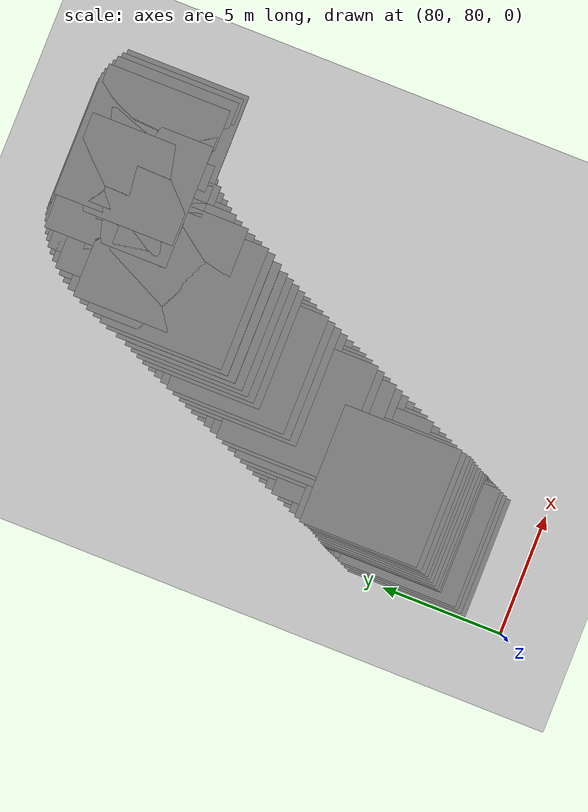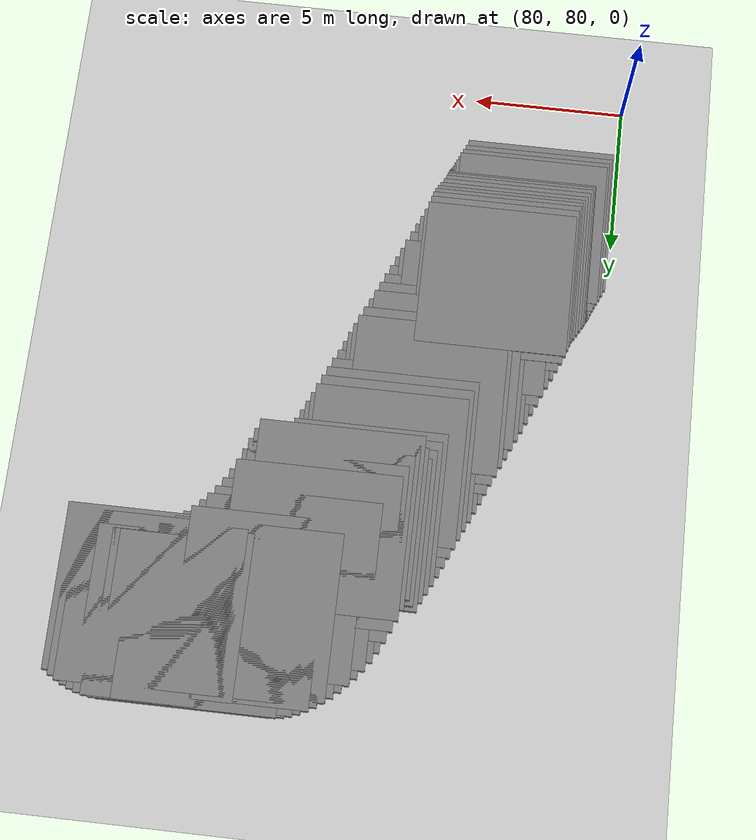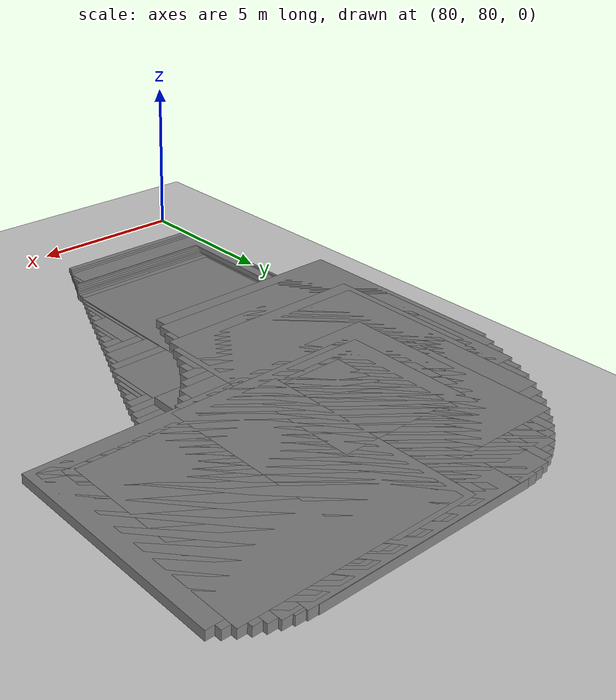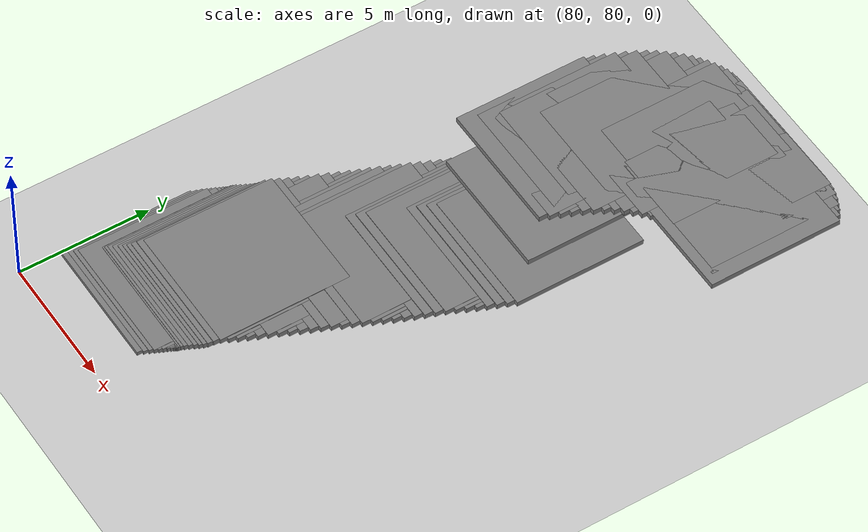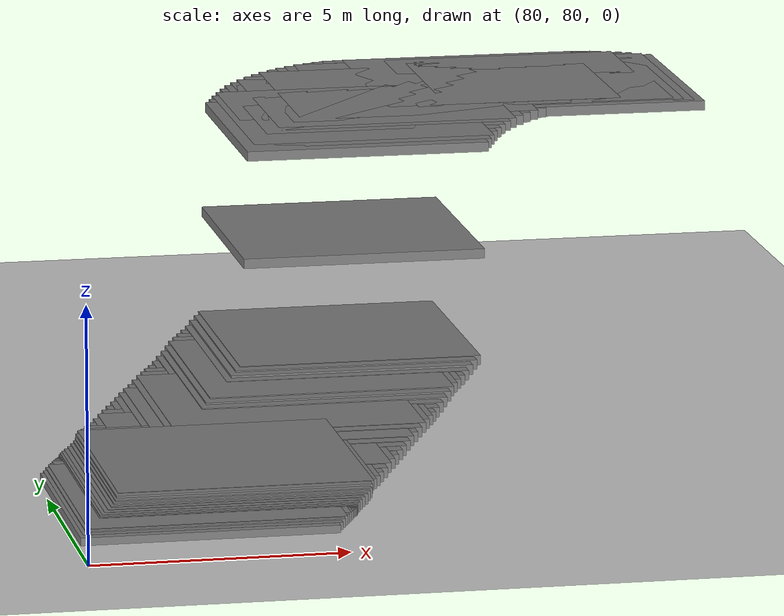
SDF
<sdf version="1.6">
 <world name="default">
  <include><uri>model://sun</uri></include>
  <include><uri>model://ground_plane</uri></include>
  <model name="road_segment_82">
   <static>true</static>
   <link name="link">
    <visual name="visual">
     <geometry><box><size>5.0 5.0 0.2</size></box></geometry>
     <material><ambient>0.5 0.5 0.5 1</ambient><diffuse>0.5 0.5 0.5 1</diffuse></material>
     <pose>93.2788015256505 99.34910517283299 4.692770348083311 0 0 0</pose>
    </visual>
    <collision name="collision">
     <geometry><box><size>5.0 5.0 0.2</size></box></geometry>
     <pose>93.2788015256505 99.34910517283299 4.692770348083311 0 0 0</pose>
    </collision>
   </link>
  </model>
  <model name="road_segment_83">
   <static>true</static>
   <link name="link">
    <visual name="visual">
     <geometry><box><size>5.0 5.0 0.2</size></box></geometry>
     <material><ambient>0.5 0.5 0.5 1</ambient><diffuse>0.5 0.5 0.5 1</diffuse></material>
     <pose>93.09452690591957 99.49252267712262 4.692770348083311 0 0 0</pose>
    </visual>
    <collision name="collision">
     <geometry><box><size>5.0 5.0 0.2</size></box></geometry>
     <pose>93.09452690591957 99.49252267712262 4.692770348083311 0 0 0</pose>
    </collision>
   </link>
  </model>
  <model name="road_segment_84">
   <static>true</static>
   <link name="link">
    <visual name="visual">
     <geometry><box><size>5.0 5.0 0.2</size></box></geometry>
     <material><ambient>0.5 0.5 0.5 1</ambient><diffuse>0.5 0.5 0.5 1</diffuse></material>
     <pose>92.90301456733904 99.61551033749701 4.692770348083311 0 0 0</pose>
    </visual>
    <collision name="collision">
     <geometry><box><size>5.0 5.0 0.2</size></box></geometry>
     <pose>92.90301456733904 99.61551033749701 4.692770348083311 0 0 0</pose>
    </collision>
   </link>
  </model>
  <model name="road_segment_85">
   <static>true</static>
   <link name="link">
    <visual name="visual">
     <geometry><box><size>5.0 5.0 0.2</size></box></geometry>
     <material><ambient>0.5 0.5 0.5 1</ambient><diffuse>0.5 0.5 0.5 1</diffuse></material>
     <pose>92.70495381645823 99.72194982430204 4.692770348083311 0 0 0</pose>
    </visual>
    <collision name="collision">
     <geometry><box><size>5.0 5.0 0.2</size></box></geometry>
     <pose>92.70495381645823 99.72194982430204 4.692770348083311 0 0 0</pose>
    </collision>
   </link>
  </model>
  <model name="road_segment_86">
   <static>true</static>
   <link name="link">
    <visual name="visual">
     <geometry><box><size>5.0 5.0 0.2</size></box></geometry>
     <material><ambient>0.5 0.5 0.5 1</ambient><diffuse>0.5 0.5 0.5 1</diffuse></material>
     <pose>92.50057442213233 99.81817438914585 4.692770348083311 0 0 0</pose>
    </visual>
    <collision name="collision">
     <geometry><box><size>5.0 5.0 0.2</size></box></geometry>
     <pose>92.50057442213233 99.81817438914585 4.692770348083311 0 0 0</pose>
    </collision>
   </link>
  </model>
  <model name="road_segment_87">
   <static>true</static>
   <link name="link">
    <visual name="visual">
     <geometry><box><size>5.0 5.0 0.2</size></box></geometry>
     <material><ambient>0.5 0.5 0.5 1</ambient><diffuse>0.5 0.5 0.5 1</diffuse></material>
     <pose>92.28907219337628 99.89580779602659 4.692770348083311 0 0 0</pose>
    </visual>
    <collision name="collision">
     <geometry><box><size>5.0 5.0 0.2</size></box></geometry>
     <pose>92.28907219337628 99.89580779602659 4.692770348083311 0 0 0</pose>
    </collision>
   </link>
  </model>
  <model name="road_segment_88">
   <static>true</static>
   <link name="link">
    <visual name="visual">
     <geometry><box><size>5.0 5.0 0.2</size></box></geometry>
     <material><ambient>0.5 0.5 0.5 1</ambient><diffuse>0.5 0.5 0.5 1</diffuse></material>
     <pose>92.07366389411413 99.9501511808431 4.692770348083311 0 0 0</pose>
    </visual>
    <collision name="collision">
     <geometry><box><size>5.0 5.0 0.2</size></box></geometry>
     <pose>92.07366389411413 99.9501511808431 4.692770348083311 0 0 0</pose>
    </collision>
   </link>
  </model>
  <model name="road_segment_89">
   <static>true</static>
   <link name="link">
    <visual name="visual">
     <geometry><box><size>5.0 5.0 0.2</size></box></geometry>
     <material><ambient>0.5 0.5 0.5 1</ambient><diffuse>0.5 0.5 0.5 1</diffuse></material>
     <pose>91.8564174440429 99.98447331862022 4.692770348083311 0 0 0</pose>
    </visual>
    <collision name="collision">
     <geometry><box><size>5.0 5.0 0.2</size></box></geometry>
     <pose>91.8564174440429 99.98447331862022 4.692770348083311 0 0 0</pose>
    </collision>
   </link>
  </model>
  <model name="road_segment_90">
   <static>true</static>
   <link name="link">
    <visual name="visual">
     <geometry><box><size>5.0 5.0 0.2</size></box></geometry>
     <material><ambient>0.5 0.5 0.5 1</ambient><diffuse>0.5 0.5 0.5 1</diffuse></material>
     <pose>91.637447727582 99.99856991092369 4.692770348083311 0 0 0</pose>
    </visual>
    <collision name="collision">
     <geometry><box><size>5.0 5.0 0.2</size></box></geometry>
     <pose>91.637447727582 99.99856991092369 4.692770348083311 0 0 0</pose>
    </collision>
   </link>
  </model>
  <model name="road_segment_91">
   <static>true</static>
   <link name="link">
    <visual name="visual">
     <geometry><box><size>5.0 5.0 0.2</size></box></geometry>
     <material><ambient>0.5 0.5 0.5 1</ambient><diffuse>0.5 0.5 0.5 1</diffuse></material>
     <pose>91.4157207848748 99.9908065702356 4.692770348083311 0 0 0</pose>
    </visual>
    <collision name="collision">
     <geometry><box><size>5.0 5.0 0.2</size></box></geometry>
     <pose>91.4157207848748 99.9908065702356 4.692770348083311 0 0 0</pose>
    </collision>
   </link>
  </model>
  <model name="road_segment_92">
   <static>true</static>
   <link name="link">
    <visual name="visual">
     <geometry><box><size>5.0 5.0 0.2</size></box></geometry>
     <material><ambient>0.5 0.5 0.5 1</ambient><diffuse>0.5 0.5 0.5 1</diffuse></material>
     <pose>91.1915812692286 99.96118329655602 4.692770348083311 0 0 0</pose>
    </visual>
    <collision name="collision">
     <geometry><box><size>5.0 5.0 0.2</size></box></geometry>
     <pose>91.1915812692286 99.96118329655602 4.692770348083311 0 0 0</pose>
    </collision>
   </link>
  </model>
  <model name="road_segment_93">
   <static>true</static>
   <link name="link">
    <visual name="visual">
     <geometry><box><size>5.0 5.0 0.2</size></box></geometry>
     <material><ambient>0.5 0.5 0.5 1</ambient><diffuse>0.5 0.5 0.5 1</diffuse></material>
     <pose>90.96698221588831 99.9060227179842 4.692770348083311 0 0 0</pose>
    </visual>
    <collision name="collision">
     <geometry><box><size>5.0 5.0 0.2</size></box></geometry>
     <pose>90.96698221588831 99.9060227179842 4.692770348083311 0 0 0</pose>
    </collision>
   </link>
  </model>
  <model name="road_segment_94">
   <static>true</static>
   <link name="link">
    <visual name="visual">
     <geometry><box><size>5.0 5.0 0.2</size></box></geometry>
     <material><ambient>0.5 0.5 0.5 1</ambient><diffuse>0.5 0.5 0.5 1</diffuse></material>
     <pose>90.74284270024211 99.82062597041539 4.692770348083311 0 0 0</pose>
    </visual>
    <collision name="collision">
     <geometry><box><size>5.0 5.0 0.2</size></box></geometry>
     <pose>90.74284270024211 99.82062597041539 4.692770348083311 0 0 0</pose>
    </collision>
   </link>
  </model>
  <model name="road_segment_95">
   <static>true</static>
   <link name="link">
    <visual name="visual">
     <geometry><box><size>5.0 5.0 0.2</size></box></geometry>
     <material><ambient>0.5 0.5 0.5 1</ambient><diffuse>0.5 0.5 0.5 1</diffuse></material>
     <pose>90.52134552639014 99.70846612731597 4.692770348083311 0 0 0</pose>
    </visual>
    <collision name="collision">
     <geometry><box><size>5.0 5.0 0.2</size></box></geometry>
     <pose>90.52134552639014 99.70846612731597 4.692770348083311 0 0 0</pose>
    </collision>
   </link>
  </model>
  <model name="road_segment_96">
   <static>true</static>
   <link name="link">
    <visual name="visual">
     <geometry><box><size>5.0 5.0 0.2</size></box></geometry>
     <material><ambient>0.5 0.5 0.5 1</ambient><diffuse>0.5 0.5 0.5 1</diffuse></material>
     <pose>90.30180138778303 99.57710223093613 4.692770348083311 0 0 0</pose>
    </visual>
    <collision name="collision">
     <geometry><box><size>5.0 5.0 0.2</size></box></geometry>
     <pose>90.30180138778303 99.57710223093613 4.692770348083311 0 0 0</pose>
    </collision>
   </link>
  </model>
  <model name="road_segment_97">
   <static>true</static>
   <link name="link">
    <visual name="visual">
     <geometry><box><size>5.0 5.0 0.2</size></box></geometry>
     <material><ambient>0.5 0.5 0.5 1</ambient><diffuse>0.5 0.5 0.5 1</diffuse></material>
     <pose>90.08317632459679 99.42898586254535 4.692770348083311 0 0 0</pose>
    </visual>
    <collision name="collision">
     <geometry><box><size>5.0 5.0 0.2</size></box></geometry>
     <pose>90.08317632459679 99.42898586254535 4.692770348083311 0 0 0</pose>
    </collision>
   </link>
  </model>
  <model name="road_segment_98">
   <static>true</static>
   <link name="link">
    <visual name="visual">
     <geometry><box><size>5.0 5.0 0.2</size></box></geometry>
     <material><ambient>0.5 0.5 0.5 1</ambient><diffuse>0.5 0.5 0.5 1</diffuse></material>
     <pose>89.86776802535098 99.26043965023936 4.692770348083311 0 0 0</pose>
    </visual>
    <collision name="collision">
     <geometry><box><size>5.0 5.0 0.2</size></box></geometry>
     <pose>89.86776802535098 99.26043965023936 4.692770348083311 0 0 0</pose>
    </collision>
   </link>
  </model>
  <model name="road_segment_99">
   <static>true</static>
   <link name="link">
    <visual name="visual">
     <geometry><box><size>5.0 5.0 0.2</size></box></geometry>
     <material><ambient>0.5 0.5 0.5 1</ambient><diffuse>0.5 0.5 0.5 1</diffuse></material>
     <pose>89.65603602773972 99.06942060962444 4.692770348083311 0 0 0</pose>
    </visual>
    <collision name="collision">
     <geometry><box><size>5.0 5.0 0.2</size></box></geometry>
     <pose>89.65603602773972 99.06942060962444 4.692770348083311 0 0 0</pose>
    </collision>
   </link>
  </model>
  <model name="road_segment_100">
   <static>true</static>
   <link name="link">
    <visual name="visual">
     <geometry><box><size>5.0 5.0 0.2</size></box></geometry>
     <material><ambient>0.5 0.5 0.5 1</ambient><diffuse>0.5 0.5 0.5 1</diffuse></material>
     <pose>89.44706125635841 98.85981041104648 4.692770348083311 0 0 0</pose>
    </visual>
    <collision name="collision">
     <geometry><box><size>5.0 5.0 0.2</size></box></geometry>
     <pose>89.44706125635841 98.85981041104648 4.692770348083311 0 0 0</pose>
    </collision>
   </link>
  </model>
  <model name="road_segment_101">
   <static>true</static>
   <link name="link">
    <visual name="visual">
     <geometry><box><size>5.0 5.0 0.2</size></box></geometry>
     <material><ambient>0.5 0.5 0.5 1</ambient><diffuse>0.5 0.5 0.5 1</diffuse></material>
     <pose>89.24509443498783 98.63385633733705 4.692770348083311 0 0 0</pose>
    </visual>
    <collision name="collision">
     <geometry><box><size>5.0 5.0 0.2</size></box></geometry>
     <pose>89.24509443498783 98.63385633733705 4.692770348083311 0 0 0</pose>
    </collision>
   </link>
  </model>
  <model name="road_segment_102">
   <static>true</static>
   <link name="link">
    <visual name="visual">
     <geometry><box><size>5.0 5.0 0.2</size></box></geometry>
     <material><ambient>0.5 0.5 0.5 1</ambient><diffuse>0.5 0.5 0.5 1</diffuse></material>
     <pose>89.05082487017732 98.38869821034355 4.692770348083311 0 0 0</pose>
    </visual>
    <collision name="collision">
     <geometry><box><size>5.0 5.0 0.2</size></box></geometry>
     <pose>89.05082487017732 98.38869821034355 4.692770348083311 0 0 0</pose>
    </collision>
   </link>
  </model>
  <model name="road_segment_103">
   <static>true</static>
   <link name="link">
    <visual name="visual">
     <geometry><box><size>5.0 5.0 0.2</size></box></geometry>
     <material><ambient>0.5 0.5 0.5 1</ambient><diffuse>0.5 0.5 0.5 1</diffuse></material>
     <pose>88.86471209962097 98.11800277845421 4.692770348083311 0 0 0</pose>
    </visual>
    <collision name="collision">
     <geometry><box><size>5.0 5.0 0.2</size></box></geometry>
     <pose>88.86471209962097 98.11800277845421 4.692770348083311 0 0 0</pose>
    </collision>
   </link>
  </model>
  <model name="road_segment_104">
   <static>true</static>
   <link name="link">
    <visual name="visual">
     <geometry><box><size>5.0 5.0 0.2</size></box></geometry>
     <material><ambient>0.5 0.5 0.5 1</ambient><diffuse>0.5 0.5 0.5 1</diffuse></material>
     <pose>88.6943384954594 97.81931846040312 4.692770348083311 0 0 0</pose>
    </visual>
    <collision name="collision">
     <geometry><box><size>5.0 5.0 0.2</size></box></geometry>
     <pose>88.6943384954594 97.81931846040312 4.692770348083311 0 0 0</pose>
    </collision>
   </link>
  </model>
  <model name="road_segment_105">
   <static>true</static>
   <link name="link">
    <visual name="visual">
     <geometry><box><size>5.0 5.0 0.2</size></box></geometry>
     <material><ambient>0.5 0.5 0.5 1</ambient><diffuse>0.5 0.5 0.5 1</diffuse></material>
     <pose>88.53855521344917 97.49897850780206 4.692770348083311 0 0 0</pose>
    </visual>
    <collision name="collision">
     <geometry><box><size>5.0 5.0 0.2</size></box></geometry>
     <pose>88.53855521344917 97.49897850780206 4.692770348083311 0 0 0</pose>
    </collision>
   </link>
  </model>
  <model name="road_segment_106">
   <static>true</static>
   <link name="link">
    <visual name="visual">
     <geometry><box><size>5.0 5.0 0.2</size></box></geometry>
     <material><ambient>0.5 0.5 0.5 1</ambient><diffuse>0.5 0.5 0.5 1</diffuse></material>
     <pose>88.3909287256931 97.16740214104652 4.692770348083311 0 0 0</pose>
    </visual>
    <collision name="collision">
     <geometry><box><size>5.0 5.0 0.2</size></box></geometry>
     <pose>88.3909287256931 97.16740214104652 4.692770348083311 0 0 0</pose>
    </collision>
   </link>
  </model>
  <model name="road_segment_107">
   <static>true</static>
   <link name="link">
    <visual name="visual">
     <geometry><box><size>5.0 5.0 0.2</size></box></geometry>
     <material><ambient>0.5 0.5 0.5 1</ambient><diffuse>0.5 0.5 0.5 1</diffuse></material>
     <pose>88.2518036854822 96.8315355070657 4.692770348083311 0 0 0</pose>
    </visual>
    <collision name="collision">
     <geometry><box><size>5.0 5.0 0.2</size></box></geometry>
     <pose>88.2518036854822 96.8315355070657 4.692770348083311 0 0 0</pose>
    </collision>
   </link>
  </model>
  <model name="road_segment_108">
   <static>true</static>
   <link name="link">
    <visual name="visual">
     <geometry><box><size>5.0 5.0 0.2</size></box></geometry>
     <material><ambient>0.5 0.5 0.5 1</ambient><diffuse>0.5 0.5 0.5 1</diffuse></material>
     <pose>88.12060567068659 96.49771185747855 4.692770348083311 0 0 0</pose>
    </visual>
    <collision name="collision">
     <geometry><box><size>5.0 5.0 0.2</size></box></geometry>
     <pose>88.12060567068659 96.49771185747855 4.692770348083311 0 0 0</pose>
    </collision>
   </link>
  </model>
  <model name="road_segment_109">
   <static>true</static>
   <link name="link">
    <visual name="visual">
     <geometry><box><size>5.0 5.0 0.2</size></box></geometry>
     <material><ambient>0.5 0.5 0.5 1</ambient><diffuse>0.5 0.5 0.5 1</diffuse></material>
     <pose>87.9909011534254 96.18084497834387 4.692770348083311 0 0 0</pose>
    </visual>
    <collision name="collision">
     <geometry><box><size>5.0 5.0 0.2</size></box></geometry>
     <pose>87.9909011534254 96.18084497834387 4.692770348083311 0 0 0</pose>
    </collision>
   </link>
  </model>
  <model name="road_segment_110">
   <static>true</static>
   <link name="link">
    <visual name="visual">
     <geometry><box><size>5.0 5.0 0.2</size></box></geometry>
     <material><ambient>0.5 0.5 0.5 1</ambient><diffuse>0.5 0.5 0.5 1</diffuse></material>
     <pose>87.85625660585046 95.8786875868264 2.531491051742006 0 0 0</pose>
    </visual>
    <collision name="collision">
     <geometry><box><size>5.0 5.0 0.2</size></box></geometry>
     <pose>87.85625660585046 95.8786875868264 2.531491051742006 0 0 0</pose>
    </collision>
   </link>
  </model>
  <model name="road_segment_111">
   <static>true</static>
   <link name="link">
    <visual name="visual">
     <geometry><box><size>5.0 5.0 0.2</size></box></geometry>
     <material><ambient>0.5 0.5 0.5 1</ambient><diffuse>0.5 0.5 0.5 1</diffuse></material>
     <pose>87.71552318366933 95.57816458281954 0.3649355075581505 0 0 0</pose>
    </visual>
    <collision name="collision">
     <geometry><box><size>5.0 5.0 0.2</size></box></geometry>
     <pose>87.71552318366933 95.57816458281954 0.3649355075581505 0 0 0</pose>
    </collision>
   </link>
  </model>
  <model name="road_segment_112">
   <static>true</static>
   <link name="link">
    <visual name="visual">
     <geometry><box><size>5.0 5.0 0.2</size></box></geometry>
     <material><ambient>0.5 0.5 0.5 1</ambient><diffuse>0.5 0.5 0.5 1</diffuse></material>
     <pose>87.5715729975478 95.27621148973999 0.3525447710992779 0 0 0</pose>
    </visual>
    <collision name="collision">
     <geometry><box><size>5.0 5.0 0.2</size></box></geometry>
     <pose>87.5715729975478 95.27621148973999 0.3525447710992779 0 0 0</pose>
    </collision>
   </link>
  </model>
  <model name="road_segment_113">
   <static>true</static>
   <link name="link">
    <visual name="visual">
     <geometry><box><size>5.0 5.0 0.2</size></box></geometry>
     <material><ambient>0.5 0.5 0.5 1</ambient><diffuse>0.5 0.5 0.5 1</diffuse></material>
     <pose>87.42498046963206 94.97323690446723 0.32591512097114755 0 0 0</pose>
    </visual>
    <collision name="collision">
     <geometry><box><size>5.0 5.0 0.2</size></box></geometry>
     <pose>87.42498046963206 94.97323690446723 0.32591512097114755 0 0 0</pose>
    </collision>
   </link>
  </model>
  <model name="road_segment_114">
   <static>true</static>
   <link name="link">
    <visual name="visual">
     <geometry><box><size>5.0 5.0 0.2</size></box></geometry>
     <material><ambient>0.5 0.5 0.5 1</ambient><diffuse>0.5 0.5 0.5 1</diffuse></material>
     <pose>87.27792840402222 94.67148810982923 0.2847882098217701 0 0 0</pose>
    </visual>
    <collision name="collision">
     <geometry><box><size>5.0 5.0 0.2</size></box></geometry>
     <pose>87.27792840402222 94.67148810982923 0.2847882098217701 0 0 0</pose>
    </collision>
   </link>
  </model>
  <model name="road_segment_115">
   <static>true</static>
   <link name="link">
    <visual name="visual">
     <geometry><box><size>5.0 5.0 0.2</size></box></geometry>
     <material><ambient>0.5 0.5 0.5 1</ambient><diffuse>0.5 0.5 0.5 1</diffuse></material>
     <pose>87.13328891135134 94.36524474952799 0.268412962280293 0 0 0</pose>
    </visual>
    <collision name="collision">
     <geometry><box><size>5.0 5.0 0.2</size></box></geometry>
     <pose>87.13328891135134 94.36524474952799 0.268412962280293 0 0 0</pose>
    </collision>
   </link>
  </model>
  <model name="road_segment_116">
   <static>true</static>
   <link name="link">
    <visual name="visual">
     <geometry><box><size>5.0 5.0 0.2</size></box></geometry>
     <material><ambient>0.5 0.5 0.5 1</ambient><diffuse>0.5 0.5 0.5 1</diffuse></material>
     <pose>86.99152152932992 94.05062515322129 0.27130446533525043 0 0 0</pose>
    </visual>
    <collision name="collision">
     <geometry><box><size>5.0 5.0 0.2</size></box></geometry>
     <pose>86.99152152932992 94.05062515322129 0.27130446533525043 0 0 0</pose>
    </collision>
   </link>
  </model>
  <model name="road_segment_117">
   <static>true</static>
   <link name="link">
    <visual name="visual">
     <geometry><box><size>5.0 5.0 0.2</size></box></geometry>
     <material><ambient>0.5 0.5 0.5 1</ambient><diffuse>0.5 0.5 0.5 1</diffuse></material>
     <pose>86.85228160469956 93.73355397564507 0.27726632730423484 0 0 0</pose>
    </visual>
    <collision name="collision">
     <geometry><box><size>5.0 5.0 0.2</size></box></geometry>
     <pose>86.85228160469956 93.73355397564507 0.27726632730423484 0 0 0</pose>
    </collision>
   </link>
  </model>
  <model name="road_segment_118">
   <static>true</static>
   <link name="link">
    <visual name="visual">
     <geometry><box><size>5.0 5.0 0.2</size></box></geometry>
     <material><ambient>0.5 0.5 0.5 1</ambient><diffuse>0.5 0.5 0.5 1</diffuse></material>
     <pose>86.71637332842909 93.41668709650673 0.27990941944381786 0 0 0</pose>
    </visual>
    <collision name="collision">
     <geometry><box><size>5.0 5.0 0.2</size></box></geometry>
     <pose>86.71637332842909 93.41668709650673 0.27990941944381786 0 0 0</pose>
    </collision>
   </link>
  </model>
  <model name="road_segment_119">
   <static>true</static>
   <link name="link">
    <visual name="visual">
     <geometry><box><size>5.0 5.0 0.2</size></box></geometry>
     <material><ambient>0.5 0.5 0.5 1</ambient><diffuse>0.5 0.5 0.5 1</diffuse></material>
     <pose>86.5818436652736 93.09777723297836 0.2601359105800196 0 0 0</pose>
    </visual>
    <collision name="collision">
     <geometry><box><size>5.0 5.0 0.2</size></box></geometry>
     <pose>86.5818436652736 93.09777723297836 0.2601359105800196 0 0 0</pose>
    </collision>
   </link>
  </model>
  <model name="road_segment_120">
   <static>true</static>
   <link name="link">
    <visual name="visual">
     <geometry><box><size>5.0 5.0 0.2</size></box></geometry>
     <material><ambient>0.5 0.5 0.5 1</ambient><diffuse>0.5 0.5 0.5 1</diffuse></material>
     <pose>86.4439823537419 92.77968456320528 0.22639177183556788 0 0 0</pose>
    </visual>
    <collision name="collision">
     <geometry><box><size>5.0 5.0 0.2</size></box></geometry>
     <pose>86.4439823537419 92.77968456320528 0.22639177183556788 0 0 0</pose>
    </collision>
   </link>
  </model>
  <model name="road_segment_121">
   <static>true</static>
   <link name="link">
    <visual name="visual">
     <geometry><box><size>5.0 5.0 0.2</size></box></geometry>
     <material><ambient>0.5 0.5 0.5 1</ambient><diffuse>0.5 0.5 0.5 1</diffuse></material>
     <pose>86.30221497172047 92.46383917626382 0.20048748158033064 0 0 0</pose>
    </visual>
    <collision name="collision">
     <geometry><box><size>5.0 5.0 0.2</size></box></geometry>
     <pose>86.30221497172047 92.46383917626382 0.20048748158033064 0 0 0</pose>
    </collision>
   </link>
  </model>
  <model name="road_segment_122">
   <static>true</static>
   <link name="link">
    <visual name="visual">
     <geometry><box><size>5.0 5.0 0.2</size></box></geometry>
     <material><ambient>0.5 0.5 0.5 1</ambient><diffuse>0.5 0.5 0.5 1</diffuse></material>
     <pose>86.15998805200492 92.14840238620182 0.1791241428581365 0 0 0</pose>
    </visual>
    <collision name="collision">
     <geometry><box><size>5.0 5.0 0.2</size></box></geometry>
     <pose>86.15998805200492 92.14840238620182 0.1791241428581365 0 0 0</pose>
    </collision>
   </link>
  </model>
  <model name="road_segment_123">
   <static>true</static>
   <link name="link">
    <visual name="visual">
     <geometry><box><size>5.0 5.0 0.2</size></box></geometry>
     <material><ambient>0.5 0.5 0.5 1</ambient><diffuse>0.5 0.5 0.5 1</diffuse></material>
     <pose>86.022241624909 91.82949252267343 0.17207920929811993 0 0 0</pose>
    </visual>
    <collision name="collision">
     <geometry><box><size>5.0 5.0 0.2</size></box></geometry>
     <pose>86.022241624909 91.82949252267343 0.17207920929811993 0 0 0</pose>
    </collision>
   </link>
  </model>
  <model name="road_segment_124">
   <static>true</static>
   <link name="link">
    <visual name="visual">
     <geometry><box><size>5.0 5.0 0.2</size></box></geometry>
     <material><ambient>0.5 0.5 0.5 1</ambient><diffuse>0.5 0.5 0.5 1</diffuse></material>
     <pose>85.88874592159382 91.50486230284706 0.18772909696670403 0 0 0</pose>
    </visual>
    <collision name="collision">
     <geometry><box><size>5.0 5.0 0.2</size></box></geometry>
     <pose>85.88874592159382 91.50486230284706 0.18772909696670403 0 0 0</pose>
    </collision>
   </link>
  </model>
  <model name="road_segment_125">
   <static>true</static>
   <link name="link">
    <visual name="visual">
     <geometry><box><size>5.0 5.0 0.2</size></box></geometry>
     <material><ambient>0.5 0.5 0.5 1</ambient><diffuse>0.5 0.5 0.5 1</diffuse></material>
     <pose>85.75605440926377 91.18411375336653 0.19919574482038402 0 0 0</pose>
    </visual>
    <collision name="collision">
     <geometry><box><size>5.0 5.0 0.2</size></box></geometry>
     <pose>85.75605440926377 91.18411375336653 0.19919574482038402 0 0 0</pose>
    </collision>
   </link>
  </model>
  <model name="road_segment_126">
   <static>true</static>
   <link name="link">
    <visual name="visual">
     <geometry><box><size>5.0 5.0 0.2</size></box></geometry>
     <material><ambient>0.5 0.5 0.5 1</ambient><diffuse>0.5 0.5 0.5 1</diffuse></material>
     <pose>85.6206056706874 90.87112854457408 0.2073734321545076 0 0 0</pose>
    </visual>
    <collision name="collision">
     <geometry><box><size>5.0 5.0 0.2</size></box></geometry>
     <pose>85.6206056706874 90.87112854457408 0.2073734321545076 0 0 0</pose>
    </collision>
   </link>
  </model>
  <model name="road_segment_127">
   <static>true</static>
   <link name="link">
    <visual name="visual">
     <geometry><box><size>5.0 5.0 0.2</size></box></geometry>
     <material><ambient>0.5 0.5 0.5 1</ambient><diffuse>0.5 0.5 0.5 1</diffuse></material>
     <pose>85.48021690178095 90.55998202173376 0.198053054609662 0 0 0</pose>
    </visual>
    <collision name="collision">
     <geometry><box><size>5.0 5.0 0.2</size></box></geometry>
     <pose>85.48021690178095 90.55998202173376 0.198053054609662 0 0 0</pose>
    </collision>
   </link>
  </model>
  <model name="road_segment_128">
   <static>true</static>
   <link name="link">
    <visual name="visual">
     <geometry><box><size>5.0 5.0 0.2</size></box></geometry>
     <material><ambient>0.5 0.5 0.5 1</ambient><diffuse>0.5 0.5 0.5 1</diffuse></material>
     <pose>85.33764532879073 90.24720111138285 0.18327757336319564 0 0 0</pose>
    </visual>
    <collision name="collision">
     <geometry><box><size>5.0 5.0 0.2</size></box></geometry>
     <pose>85.33764532879073 90.24720111138285 0.18327757336319564 0 0 0</pose>
    </collision>
   </link>
  </model>
  <model name="road_segment_129">
   <static>true</static>
   <link name="link">
    <visual name="visual">
     <geometry><box><size>5.0 5.0 0.2</size></box></geometry>
     <material><ambient>0.5 0.5 0.5 1</ambient><diffuse>0.5 0.5 0.5 1</diffuse></material>
     <pose>85.19507375580051 89.93196861975878 0.18552320803817976 0 0 0</pose>
    </visual>
    <collision name="collision">
     <geometry><box><size>5.0 5.0 0.2</size></box></geometry>
     <pose>85.19507375580051 89.93196861975878 0.18552320803817976 0 0 0</pose>
    </collision>
   </link>
  </model>
  <model name="road_segment_130">
   <static>true</static>
   <link name="link">
    <visual name="visual">
     <geometry><box><size>5.0 5.0 0.2</size></box></geometry>
     <material><ambient>0.5 0.5 0.5 1</ambient><diffuse>0.5 0.5 0.5 1</diffuse></material>
     <pose>85.05445521803885 89.61694042657261 0.17402675087465486 0 0 0</pose>
    </visual>
    <collision name="collision">
     <geometry><box><size>5.0 5.0 0.2</size></box></geometry>
     <pose>85.05445521803885 89.61694042657261 0.17402675087465486 0 0 0</pose>
    </collision>
   </link>
  </model>
  <model name="road_segment_131">
   <static>true</static>
   <link name="link">
    <visual name="visual">
     <geometry><box><size>5.0 5.0 0.2</size></box></geometry>
     <material><ambient>0.5 0.5 0.5 1</ambient><diffuse>0.5 0.5 0.5 1</diffuse></material>
     <pose>84.91636413766827 89.30048214431376 0.1608212266133544 0 0 0</pose>
    </visual>
    <collision name="collision">
     <geometry><box><size>5.0 5.0 0.2</size></box></geometry>
     <pose>84.91636413766827 89.30048214431376 0.1608212266133544 0 0 0</pose>
    </collision>
   </link>
  </model>
  <model name="road_segment_132">
   <static>true</static>
   <link name="link">
    <visual name="visual">
     <geometry><box><size>5.0 5.0 0.2</size></box></geometry>
     <material><ambient>0.5 0.5 0.5 1</ambient><diffuse>0.5 0.5 0.5 1</diffuse></material>
     <pose>84.77735398189314 88.97952929639169 0.15864514699467508 0 0 0</pose>
    </visual>
    <collision name="collision">
     <geometry><box><size>5.0 5.0 0.2</size></box></geometry>
     <pose>84.77735398189314 88.97952929639169 0.15864514699467508 0 0 0</pose>
    </collision>
   </link>
  </model>
  <model name="road_segment_133">
   <static>true</static>
   <link name="link">
    <visual name="visual">
     <geometry><box><size>5.0 5.0 0.2</size></box></geometry>
     <material><ambient>0.5 0.5 0.5 1</ambient><diffuse>0.5 0.5 0.5 1</diffuse></material>
     <pose>84.63616102200159 88.65592056876214 0.15241500123708634 0 0 0</pose>
    </visual>
    <collision name="collision">
     <geometry><box><size>5.0 5.0 0.2</size></box></geometry>
     <pose>84.63616102200159 88.65592056876214 0.15241500123708634 0 0 0</pose>
    </collision>
   </link>
  </model>
  <model name="road_segment_134">
   <static>true</static>
   <link name="link">
    <visual name="visual">
     <geometry><box><size>5.0 5.0 0.2</size></box></geometry>
     <material><ambient>0.5 0.5 0.5 1</ambient><diffuse>0.5 0.5 0.5 1</diffuse></material>
     <pose>84.49657644408025 88.33231184113623 0.15894324009312427 0 0 0</pose>
    </visual>
    <collision name="collision">
     <geometry><box><size>5.0 5.0 0.2</size></box></geometry>
     <pose>84.49657644408025 88.33231184113623 0.15894324009312427 0 0 0</pose>
    </collision>
   </link>
  </model>
  <model name="road_segment_135">
   <static>true</static>
   <link name="link">
    <visual name="visual">
     <geometry><box><size>5.0 5.0 0.2</size></box></geometry>
     <material><ambient>0.5 0.5 0.5 1</ambient><diffuse>0.5 0.5 0.5 1</diffuse></material>
     <pose>84.35986397682467 88.01095039633833 0.16401082276676104 0 0 0</pose>
    </visual>
    <collision name="collision">
     <geometry><box><size>5.0 5.0 0.2</size></box></geometry>
     <pose>84.35986397682467 88.01095039633833 0.16401082276676104 0 0 0</pose>
    </collision>
   </link>
  </model>
  <model name="road_segment_136">
   <static>true</static>
   <link name="link">
    <visual name="visual">
     <geometry><box><size>5.0 5.0 0.2</size></box></geometry>
     <material><ambient>0.5 0.5 0.5 1</ambient><diffuse>0.5 0.5 0.5 1</diffuse></material>
     <pose>84.22234731858397 87.69510500939685 0.15115307378698467 0 0 0</pose>
    </visual>
    <collision name="collision">
     <geometry><box><size>5.0 5.0 0.2</size></box></geometry>
     <pose>84.22234731858397 87.69510500939685 0.15115307378698467 0 0 0</pose>
    </collision>
   </link>
  </model>
  <model name="road_segment_137">
   <static>true</static>
   <link name="link">
    <visual name="visual">
     <geometry><box><size>5.0 5.0 0.2</size></box></geometry>
     <material><ambient>0.5 0.5 0.5 1</ambient><diffuse>0.5 0.5 0.5 1</diffuse></material>
     <pose>84.08471577592383 87.38681866470556 0.14920553221044974 0 0 0</pose>
    </visual>
    <collision name="collision">
     <geometry><box><size>5.0 5.0 0.2</size></box></geometry>
     <pose>84.08471577592383 87.38681866470556 0.14920553221044974 0 0 0</pose>
    </collision>
   </link>
  </model>
  <model name="road_segment_138">
   <static>true</static>
   <link name="link">
    <visual name="visual">
     <geometry><box><size>5.0 5.0 0.2</size></box></geometry>
     <material><ambient>0.5 0.5 0.5 1</ambient><diffuse>0.5 0.5 0.5 1</diffuse></material>
     <pose>83.95294333899832 87.09140312167932 0.15560459739049298 0 0 0</pose>
    </visual>
    <collision name="collision">
     <geometry><box><size>5.0 5.0 0.2</size></box></geometry>
     <pose>83.95294333899832 87.09140312167932 0.15560459739049298 0 0 0</pose>
    </collision>
   </link>
  </model>
  <model name="road_segment_139">
   <static>true</static>
   <link name="link">
    <visual name="visual">
     <geometry><box><size>5.0 5.0 0.2</size></box></geometry>
     <material><ambient>0.5 0.5 0.5 1</ambient><diffuse>0.5 0.5 0.5 1</diffuse></material>
     <pose>83.83082119387774 86.81600882569245 0.1748415386770827 0 0 0</pose>
    </visual>
    <collision name="collision">
     <geometry><box><size>5.0 5.0 0.2</size></box></geometry>
     <pose>83.83082119387774 86.81600882569245 0.1748415386770827 0 0 0</pose>
    </collision>
   </link>
  </model>
  <model name="road_segment_140">
   <static>true</static>
   <link name="link">
    <visual name="visual">
     <geometry><box><size>5.0 5.0 0.2</size></box></geometry>
     <material><ambient>0.5 0.5 0.5 1</ambient><diffuse>0.5 0.5 0.5 1</diffuse></material>
     <pose>83.72845917007746 86.5624744626935 0.20838694868923496 0 0 0</pose>
    </visual>
    <collision name="collision">
     <geometry><box><size>5.0 5.0 0.2</size></box></geometry>
     <pose>83.72845917007746 86.5624744626935 0.20838694868923496 0 0 0</pose>
    </collision>
   </link>
  </model>
  <model name="road_segment_141">
   <static>true</static>
   <link name="link">
    <visual name="visual">
     <geometry><box><size>5.0 5.0 0.2</size></box></geometry>
     <material><ambient>0.5 0.5 0.5 1</ambient><diffuse>0.5 0.5 0.5 1</diffuse></material>
     <pose>83.65837967005184 86.33570319522514 0.2008750026083146 0 0 0</pose>
    </visual>
    <collision name="collision">
     <geometry><box><size>5.0 5.0 0.2</size></box></geometry>
     <pose>83.65837967005184 86.33570319522514 0.2008750026083146 0 0 0</pose>
    </collision>
   </link>
  </model>
  <model name="road_segment_142">
   <static>true</static>
   <link name="link">
    <visual name="visual">
     <geometry><box><size>5.0 5.0 0.2</size></box></geometry>
     <material><ambient>0.5 0.5 0.5 1</ambient><diffuse>0.5 0.5 0.5 1</diffuse></material>
     <pose>83.60943890446151 86.15040451090823 0.16687251651187354 0 0 0</pose>
    </visual>
    <collision name="collision">
     <geometry><box><size>5.0 5.0 0.2</size></box></geometry>
     <pose>83.60943890446151 86.15040451090823 0.16687251651187354 0 0 0</pose>
    </collision>
   </link>
  </model>
  <model name="road_segment_143">
   <static>true</static>
   <link name="link">
    <visual name="visual">
     <geometry><box><size>5.0 5.0 0.2</size></box></geometry>
     <material><ambient>0.5 0.5 0.5 1</ambient><diffuse>0.5 0.5 0.5 1</diffuse></material>
     <pose>83.5545241487008 86.00882569257077 0.14576752514166874 0 0 0</pose>
    </visual>
    <collision name="collision">
     <geometry><box><size>5.0 5.0 0.2</size></box></geometry>
     <pose>83.5545241487008 86.00882569257077 0.14576752514166874 0 0 0</pose>
    </collision>
   </link>
  </model>
  <model name="road_segment_144">
   <static>true</static>
   <link name="link">
    <visual name="visual">
     <geometry><box><size>5.0 5.0 0.2</size></box></geometry>
     <material><ambient>0.5 0.5 0.5 1</ambient><diffuse>0.5 0.5 0.5 1</diffuse></material>
     <pose>83.48237672901087 85.8868595243932 0.12068795912547434 0 0 0</pose>
    </visual>
    <collision name="collision">
     <geometry><box><size>5.0 5.0 0.2</size></box></geometry>
     <pose>83.48237672901087 85.8868595243932 0.12068795912547434 0 0 0</pose>
    </collision>
   </link>
  </model>
  <model name="road_segment_145">
   <static>true</static>
   <link name="link">
    <visual name="visual">
     <geometry><box><size>5.0 5.0 0.2</size></box></geometry>
     <material><ambient>0.5 0.5 0.5 1</ambient><diffuse>0.5 0.5 0.5 1</diffuse></material>
     <pose>83.39667294700992 85.75059246547065 0.10428290227415224 0 0 0</pose>
    </visual>
    <collision name="collision">
     <geometry><box><size>5.0 5.0 0.2</size></box></geometry>
     <pose>83.39667294700992 85.75059246547065 0.10428290227415224 0 0 0</pose>
    </collision>
   </link>
  </model>
  <model name="road_segment_146">
   <static>true</static>
   <link name="link">
    <visual name="visual">
     <geometry><box><size>5.0 5.0 0.2</size></box></geometry>
     <material><ambient>0.5 0.5 0.5 1</ambient><diffuse>0.5 0.5 0.5 1</diffuse></material>
     <pose>83.30970543631344 85.59716433766134 0.0918722929420497 0 0 0</pose>
    </visual>
    <collision name="collision">
     <geometry><box><size>5.0 5.0 0.2</size></box></geometry>
     <pose>83.30970543631344 85.59716433766134 0.0918722929420497 0 0 0</pose>
    </collision>
   </link>
  </model>
  <model name="road_segment_147">
   <static>true</static>
   <link name="link">
    <visual name="visual">
     <geometry><box><size>5.0 5.0 0.2</size></box></geometry>
     <material><ambient>0.5 0.5 0.5 1</ambient><diffuse>0.5 0.5 0.5 1</diffuse></material>
     <pose>83.23790266989816 85.46008008498711 0.08579119373368561 0 0 0</pose>
    </visual>
    <collision name="collision">
     <geometry><box><size>5.0 5.0 0.2</size></box></geometry>
     <pose>83.23790266989816 85.46008008498711 0.08579119373368561 0 0 0</pose>
    </collision>
   </link>
  </model>
  <model name="road_segment_148">
   <static>true</static>
   <link name="link">
    <visual name="visual">
     <geometry><box><size>5.0 5.0 0.2</size></box></geometry>
     <material><ambient>0.5 0.5 0.5 1</ambient><diffuse>0.5 0.5 0.5 1</diffuse></material>
     <pose>83.18873213546895 85.36262972950854 0.08301892791810786 0 0 0</pose>
    </visual>
    <collision name="collision">
     <geometry><box><size>5.0 5.0 0.2</size></box></geometry>
     <pose>83.18873213546895 85.36262972950854 0.08301892791810786 0 0 0</pose>
    </collision>
   </link>
  </model>
  <model name="road_segment_149">
   <static>true</static>
   <link name="link">
    <visual name="visual">
     <geometry><box><size>5.0 5.0 0.2</size></box></geometry>
     <material><ambient>0.5 0.5 0.5 1</ambient><diffuse>0.5 0.5 0.5 1</diffuse></material>
     <pose>83.16219383300947 85.29786712429288 0.06427880846226687 0 0 0</pose>
    </visual>
    <collision name="collision">
     <geometry><box><size>5.0 5.0 0.2</size></box></geometry>
     <pose>83.16219383300947 85.29786712429288 0.06427880846226687 0 0 0</pose>
    </collision>
   </link>
  </model>
  <model name="road_segment_150">
   <static>true</static>
   <link name="link">
    <visual name="visual">
     <geometry><box><size>5.0 5.0 0.2</size></box></geometry>
     <material><ambient>0.5 0.5 0.5 1</ambient><diffuse>0.5 0.5 0.5 1</diffuse></material>
     <pose>83.14875235513423 85.25271716923712 0.05464046494574208 0 0 0</pose>
    </visual>
    <collision name="collision">
     <geometry><box><size>5.0 5.0 0.2</size></box></geometry>
     <pose>83.14875235513423 85.25271716923712 0.05464046494574208 0 0 0</pose>
    </collision>
   </link>
  </model>
  <model name="road_segment_151">
   <static>true</static>
   <link name="link">
    <visual name="visual">
     <geometry><box><size>5.0 5.0 0.2</size></box></geometry>
     <material><ambient>0.5 0.5 0.5 1</ambient><diffuse>0.5 0.5 0.5 1</diffuse></material>
     <pose>83.13600018380833 85.22043801585006 0.04070958081154852 0 0 0</pose>
    </visual>
    <collision name="collision">
     <geometry><box><size>5.0 5.0 0.2</size></box></geometry>
     <pose>83.13600018380833 85.22043801585006 0.04070958081154852 0 0 0</pose>
    </collision>
   </link>
  </model>
  <model name="road_segment_152">
   <static>true</static>
   <link name="link">
    <visual name="visual">
     <geometry><box><size>5.0 5.0 0.2</size></box></geometry>
     <material><ambient>0.5 0.5 0.5 1</ambient><diffuse>0.5 0.5 0.5 1</diffuse></material>
     <pose>83.11715913789257 85.19244912968469 0.02792138688807697 0 0 0</pose>
    </visual>
    <collision name="collision">
     <geometry><box><size>5.0 5.0 0.2</size></box></geometry>
     <pose>83.11715913789257 85.19244912968469 0.02792138688807697 0 0 0</pose>
    </collision>
   </link>
  </model>
  <model name="road_segment_153">
   <static>true</static>
   <link name="link">
    <visual name="visual">
     <geometry><box><size>5.0 5.0 0.2</size></box></geometry>
     <material><ambient>0.5 0.5 0.5 1</ambient><diffuse>0.5 0.5 0.5 1</diffuse></material>
     <pose>83.08832314689722 85.14668627931519 0.03701322639077819 0 0 0</pose>
    </visual>
    <collision name="collision">
     <geometry><box><size>5.0 5.0 0.2</size></box></geometry>
     <pose>83.08832314689722 85.14668627931519 0.03701322639077819 0 0 0</pose>
    </collision>
   </link>
  </model>
  <model name="road_segment_154">
   <static>true</static>
   <link name="link">
    <visual name="visual">
     <geometry><box><size>5.0 5.0 0.2</size></box></geometry>
     <material><ambient>0.5 0.5 0.5 1</ambient><diffuse>0.5 0.5 0.5 1</diffuse></material>
     <pose>83.05041128622682 85.06496690365069 0.03841426395348953 0 0 0</pose>
    </visual>
    <collision name="collision">
     <geometry><box><size>5.0 5.0 0.2</size></box></geometry>
     <pose>83.05041128622682 85.06496690365069 0.03841426395348953 0 0 0</pose>
    </collision>
   </link>
  </model>
  <model name="road_segment_155">
   <static>true</static>
   <link name="link">
    <visual name="visual">
     <geometry><box><size>5.0 5.0 0.2</size></box></geometry>
     <material><ambient>0.5 0.5 0.5 1</ambient><diffuse>0.5 0.5 0.5 1</diffuse></material>
     <pose>83.00434263130226 84.9550543433829 0.04487294775322263 0 0 0</pose>
    </visual>
    <collision name="collision">
     <geometry><box><size>5.0 5.0 0.2</size></box></geometry>
     <pose>83.00434263130226 84.9550543433829 0.04487294775322263 0 0 0</pose>
    </collision>
   </link>
  </model>
  <model name="road_segment_156">
   <static>true</static>
   <link name="link">
    <visual name="visual">
     <geometry><box><size>5.0 5.0 0.2</size></box></geometry>
     <material><ambient>0.5 0.5 0.5 1</ambient><diffuse>0.5 0.5 0.5 1</diffuse></material>
     <pose>82.95115114194752 84.8298194001805 0.05480938436819664 0 0 0</pose>
    </visual>
    <collision name="collision">
     <geometry><box><size>5.0 5.0 0.2</size></box></geometry>
     <pose>82.95115114194752 84.8298194001805 0.05480938436819664 0 0 0</pose>
    </collision>
   </link>
  </model>
  <model name="road_segment_157">
   <static>true</static>
   <link name="link">
    <visual name="visual">
     <geometry><box><size>5.0 5.0 0.2</size></box></geometry>
     <material><ambient>0.5 0.5 0.5 1</ambient><diffuse>0.5 0.5 0.5 1</diffuse></material>
     <pose>82.89347915995683 84.69661681784848 0.05289165210150666 0 0 0</pose>
    </visual>
    <collision name="collision">
     <geometry><box><size>5.0 5.0 0.2</size></box></geometry>
     <pose>82.89347915995683 84.69661681784848 0.05289165210150666 0 0 0</pose>
    </collision>
   </link>
  </model>
  <model name="road_segment_158">
   <static>true</static>
   <link name="link">
    <visual name="visual">
     <geometry><box><size>5.0 5.0 0.2</size></box></geometry>
     <material><ambient>0.5 0.5 0.5 1</ambient><diffuse>0.5 0.5 0.5 1</diffuse></material>
     <pose>82.83098203207183 84.55973686360855 0.05891313269018091 0 0 0</pose>
    </visual>
    <collision name="collision">
     <geometry><box><size>5.0 5.0 0.2</size></box></geometry>
     <pose>82.83098203207183 84.55973686360855 0.05891313269018091 0 0 0</pose>
    </collision>
   </link>
  </model>
  <model name="road_segment_159">
   <static>true</static>
   <link name="link">
    <visual name="visual">
     <geometry><box><size>5.0 5.0 0.2</size></box></geometry>
     <material><ambient>0.5 0.5 0.5 1</ambient><diffuse>0.5 0.5 0.5 1</diffuse></material>
     <pose>82.75837507467145 84.41448067336316 0.04866866654014271 0 0 0</pose>
    </visual>
    <collision name="collision">
     <geometry><box><size>5.0 5.0 0.2</size></box></geometry>
     <pose>82.75837507467145 84.41448067336316 0.04866866654014271 0 0 0</pose>
    </collision>
   </link>
  </model>
  <model name="road_segment_160">
   <static>true</static>
   <link name="link">
    <visual name="visual">
     <geometry><box><size>5.0 5.0 0.2</size></box></geometry>
     <material><ambient>0.5 0.5 0.5 1</ambient><diffuse>0.5 0.5 0.5 1</diffuse></material>
     <pose>82.67841551398568 84.2447086704224 0.027523929423478012 0 0 0</pose>
    </visual>
    <collision name="collision">
     <geometry><box><size>5.0 5.0 0.2</size></box></geometry>
     <pose>82.67841551398568 84.2447086704224 0.027523929423478012 0 0 0</pose>
    </collision>
   </link>
  </model>
  <model name="road_segment_161">
   <static>true</static>
   <link name="link">
    <visual name="visual">
     <geometry><box><size>5.0 5.0 0.2</size></box></geometry>
     <material><ambient>0.5 0.5 0.5 1</ambient><diffuse>0.5 0.5 0.5 1</diffuse></material>
     <pose>82.59753687789537 84.04531339380202 0.02596390887492709 0 0 0</pose>
    </visual>
    <collision name="collision">
     <geometry><box><size>5.0 5.0 0.2</size></box></geometry>
     <pose>82.59753687789537 84.04531339380202 0.02596390887492709 0 0 0</pose>
    </collision>
   </link>
  </model>
 </world>
</sdf>
